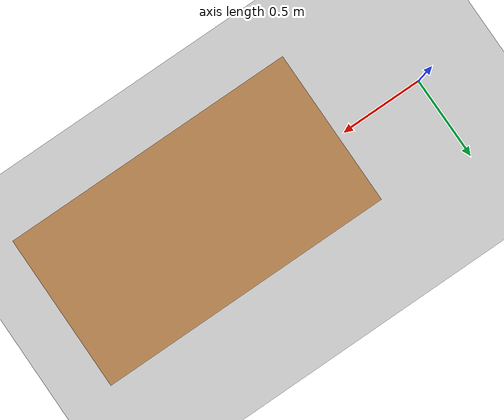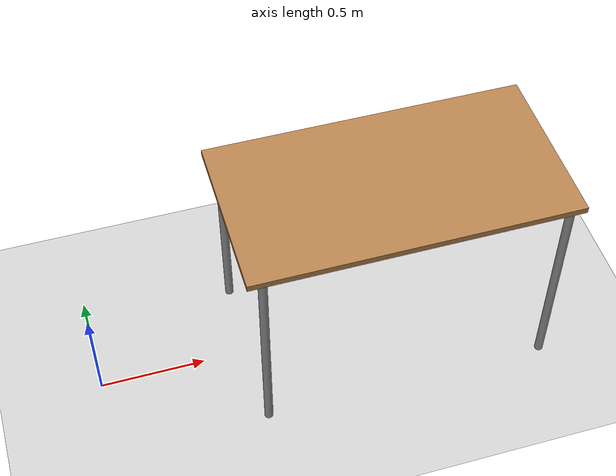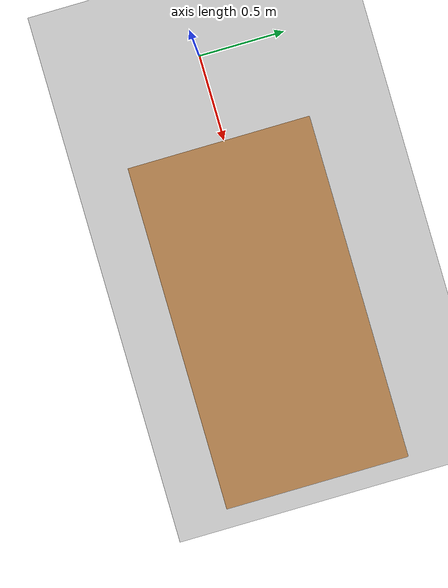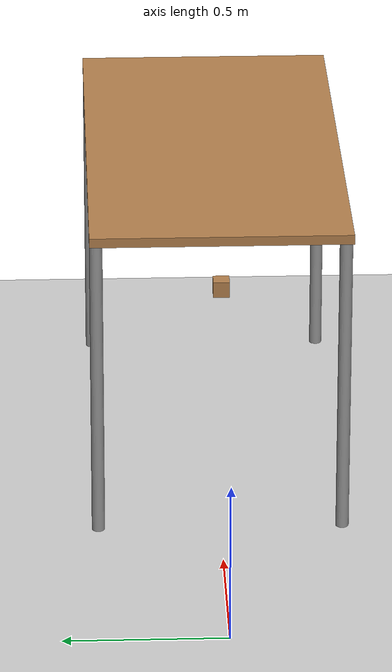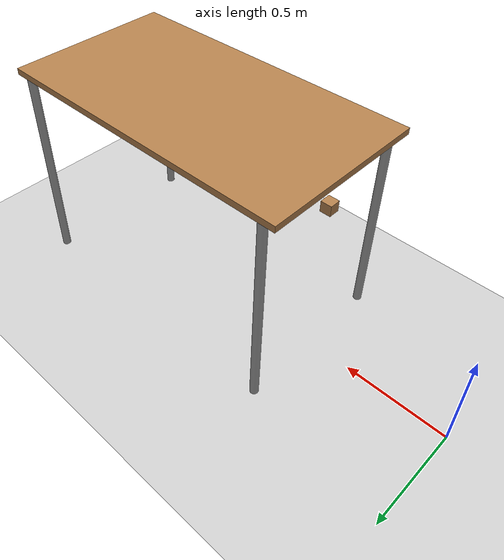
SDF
<?xml version="1.0" ?>
<sdf version="1.4">
	<world name="wood_cube_5cm_setup">
		<!-- A global light source -->
		<include>
			<uri>model://sun</uri>
		</include>
		<!-- A ground plane -->
		<include>
			<uri>model://ground_plane</uri>
		</include>
		<!-- A table to hold things -->
		<include>
			<uri>model://low_table</uri>
			<name>low_table</name>
			<pose>1.4 0 0 0 0 0</pose>
		</include>
		<!-- A table to hold things -->
		<include>
			<uri>model://wood_cube_5cm</uri>
			<name>wood_cube_5cm</name>
			<pose>0.71 0 0.8 0 0 0</pose>
		</include>

		<!-- Shadows disabled -->
		<scene>
			<shadows>0</shadows>
		</scene>

		<!-- Camera position -->
		<gui>
			<camera name="camera1">
				<pose>2.6319 -1.80076 1.48357 0 0.292 2.4</pose>
			</camera>
		</gui>
	</world>
</sdf>

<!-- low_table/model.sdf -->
<sdf version="1.5">
  <model name="low_table">
    <static>true</static>
    <link name="link">
      <collision name="surface">
        <pose>0 0 1.0 0 0 0</pose>
        <geometry>
          <box>
            <size>1.5 0.8 0.03</size>
          </box>
        </geometry>
        <surface>
          <friction>
            <ode>
              <mu>0.6</mu>
              <mu2>0.6</mu2>
            </ode>
          </friction>
        </surface>
      </collision>
      <visual name="visual1">
        <pose>0 0 1.0 0 0 0</pose>
        <geometry>
          <box>
            <size>1.5 0.8 0.03</size>
          </box>
        </geometry>
        <material>
          <script>
            <uri>file://media/materials/scripts/gazebo.material</uri>
            <name>Gazebo/Wood</name>
          </script>
        </material>
      </visual>
      <collision name="front_left_leg">
        <pose>0.68 0.38 0.5 0 0 0</pose>
        <geometry>
          <cylinder>
            <radius>0.02</radius>
            <length>1.0</length>
          </cylinder>
        </geometry>
      </collision>
      <visual name="front_left_leg">
        <pose>0.68 0.38 0.5 0 0 0</pose>
        <geometry>
          <cylinder>
            <radius>0.02</radius>
            <length>1.0</length>
          </cylinder>
        </geometry>
        <material>
          <script>
            <uri>file://media/materials/scripts/gazebo.material</uri>
            <name>Gazebo/Grey</name>
          </script>
        </material>
      </visual>
      <collision name="front_right_leg">
        <pose>0.68 -0.38 0.5 0 0 0</pose>
        <geometry>
          <cylinder>
            <radius>0.02</radius>
            <length>1.0</length>
          </cylinder>
        </geometry>
      </collision>
      <visual name="front_right_leg">
        <pose>0.68 -0.38 0.5 0 0 0</pose>
        <geometry>
          <cylinder>
            <radius>0.02</radius>
            <length>1.0</length>
          </cylinder>
        </geometry>
        <material>
          <script>
            <uri>file://media/materials/scripts/gazebo.material</uri>
            <name>Gazebo/Grey</name>
          </script>
        </material>
      </visual>
      <collision name="back_right_leg">
        <pose>-0.68 -0.38 0.5 0 0 0</pose>
        <geometry>
          <cylinder>
            <radius>0.02</radius>
            <length>1.0</length>
          </cylinder>
        </geometry>
      </collision>
      <visual name="back_right_leg">
        <pose>-0.68 -0.38 0.5 0 0 0</pose>
        <geometry>
          <cylinder>
            <radius>0.02</radius>
            <length>1.0</length>
          </cylinder>
        </geometry>
        <material>
          <script>
            <uri>file://media/materials/scripts/gazebo.material</uri>
            <name>Gazebo/Grey</name>
          </script>
        </material>
      </visual>
      <collision name="back_left_leg">
        <pose>-0.68 0.38 0.5 0 0 0</pose>
        <geometry>
          <cylinder>
            <radius>0.02</radius>
            <length>1.0</length>
          </cylinder>
        </geometry>
      </collision>
      <visual name="back_left_leg">
        <pose>-0.68 0.38 0.5 0 0 0</pose>
        <geometry>
          <cylinder>
            <radius>0.02</radius>
            <length>1.0</length>
          </cylinder>
        </geometry>
        <material>
          <script>
            <uri>file://media/materials/scripts/gazebo.material</uri>
            <name>Gazebo/Grey</name>
          </script>
        </material>
      </visual>
    </link>
  </model>
</sdf>

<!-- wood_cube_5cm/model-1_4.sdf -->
<sdf version="1.4">
  <model name="wood_cube_5cm">
    <link name="link">
      <pose>0 0 0.025 0 0 0</pose>
      <inertial>
        <mass>0.0565</mass>
        <inertia>
          <ixx>2.3541666666666672e-05</ixx>
          <ixy>0</ixy>
          <ixz>0</ixz>
          <iyy>2.3541666666666672e-05</iyy>
          <iyz>0</iyz>
          <izz>2.3541666666666672e-05</izz>
        </inertia>
      </inertial>

      <collision name="collision">
        <geometry>
          <box>
            <size>0.05 0.05 0.05</size>
          </box>
        </geometry>
      </collision>

      <visual name="visual">
        <geometry>
          <box>
            <size>0.05 0.05 0.05</size>
          </box>
        </geometry>
        <material>
          <script>
            <uri>file://media/materials/scripts/gazebo.material</uri>
            <name>Gazebo/Wood</name>
          </script>
        </material>
      </visual>

    </link>
  </model>
</sdf>
